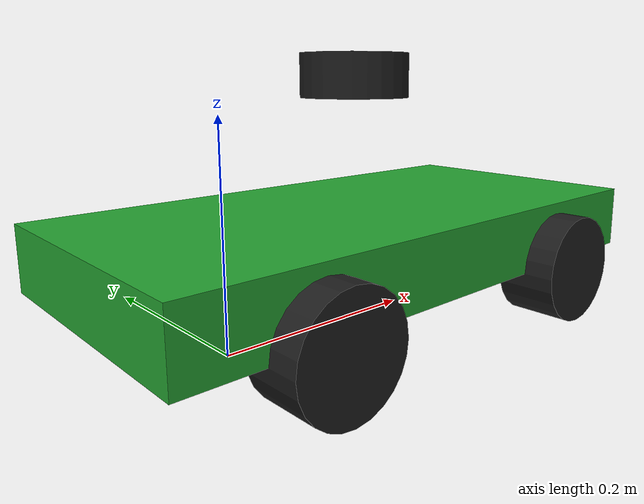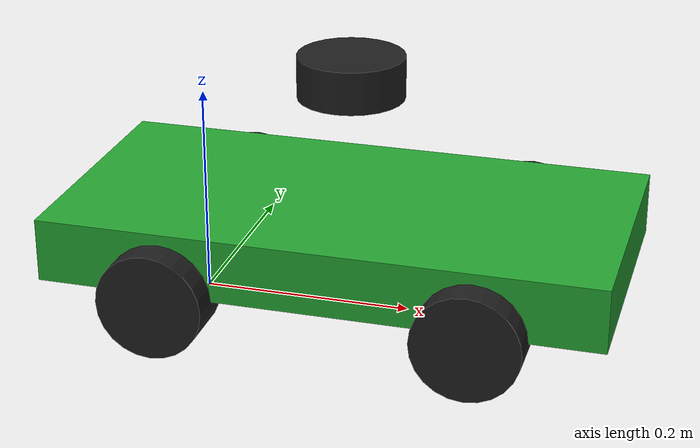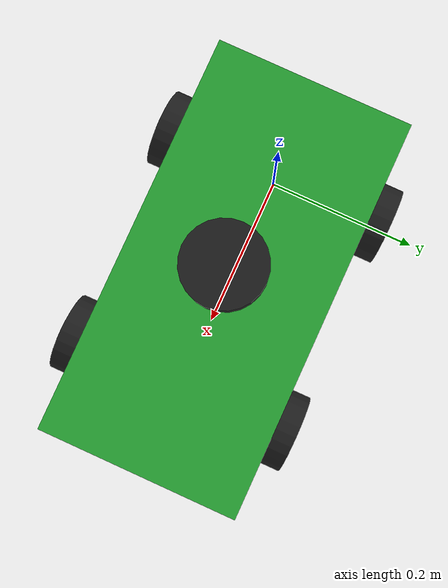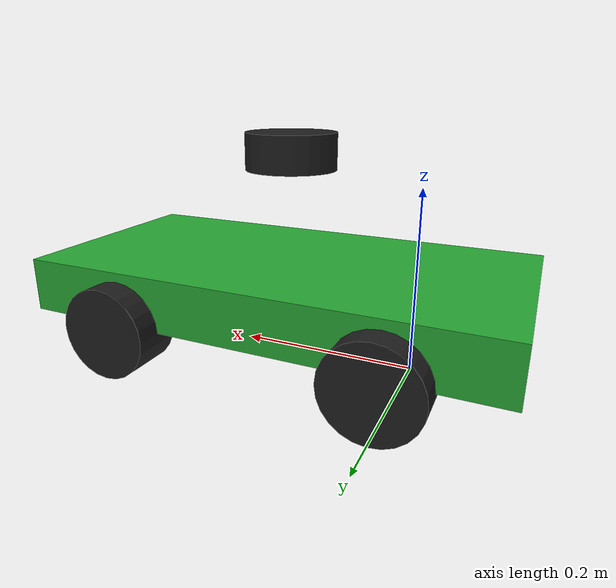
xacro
<?xml version="1.0"?>
<robot xmlns:xacro="http://www.ros.org/wiki/xacro"  name="robot">
    <xacro:include filename="inertial_macros.xacro" />
    <xacro:include filename="materials.xacro" />
    <xacro:include filename="lidar.xacro" />
    <xacro:include filename="robot_core.xacro" />
    <xacro:include filename="ros2_bicycle.xacro" />
</robot>

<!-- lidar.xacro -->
<robot xmlns:xacro="http://www.ros.org/wiki/xacro">

    <joint name="laser_joint" type="fixed">
        <parent link="chassis_link"/>
        <child link="laser_frame"/>
        <origin xyz="0 0 0.15" rpy="0 0 0"/>

    </joint>

    <link name="laser_frame">
        <visual>
            <geometry>
                <cylinder length="0.04" radius="0.05"/>
            </geometry>
            <material name="black"/>
        </visual>

        <collision>
            <geometry>
                <cylinder length="0.04" radius="0.05"/>
            </geometry>
        </collision>

        <xacro:inertial_cylinder mass="0.1" length="0.04" radius="0.05">
            <origin xyz="0 0 0" rpy="0 0 0"/>
        </xacro:inertial_cylinder>

    </link>

</robot>

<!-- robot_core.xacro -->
<robot xmlns:xacro="http://www.ros.org/wiki/xacro">

  <!-- Constants for robot dimensions -->
  <xacro:property name="PI" value="3.1415926535897931"/>
  <xacro:property name="base_mass" value="4.0" /> <!-- arbitrary value for base mass -->
  <xacro:property name="base_width" value="0.260" />
  <xacro:property name="base_length" value="0.525" />
  <xacro:property name="base_height" value="0.060" />
  <xacro:property name="wheelbase" value="0.289" />
  <xacro:property name="wheel_mass" value="0.34055" /> <!-- arbitrary value for wheel mass -->
  <xacro:property name="wheel_len" value="0.055" />
  <xacro:property name="wheel_radius" value="0.05" />

  <!-- Base Link -->
  <link name="base_link" />

  <!-- Base Footprint -->
  <joint name="base_footprint_joint" type="fixed">
    <parent link="base_link"/>
    <child link="base_footprint"/>
    <origin xyz="0 0 0" rpy="0 0 0"/>
  </joint>

  <link name="base_footprint" />

  <!-- Chassis -->

  <link name="chassis_link">
    <collision>
      <origin xyz="${wheelbase/2} 0 ${base_height/2 + wheel_radius}" rpy="0 0 0"/>
      <geometry>
        <box size="${base_length} ${base_width} ${base_height}"/>
      </geometry>
    </collision>

    <visual>
      <origin xyz="0 0 0" rpy="0 0 0"/>
      <geometry>
        <box size="${base_length} ${base_width} ${base_height}"/>
      </geometry>
      <material name="green"/>
    </visual>

    <xacro:inertial_box mass="${base_mass}" x="${wheelbase}" y="${base_width}" z="${base_height}">
      <origin xyz="${wheelbase/2} 0 ${base_height/2 + wheel_radius}" rpy="0 0 0"/>
    </xacro:inertial_box>
    </link>

    <joint name="chassis_joint" type="fixed">
      <parent link="base_link"/>
      <child link="chassis_link"/>
      <origin xyz="${wheelbase/2} 0 ${base_height/2 + wheel_radius}" rpy="0 0 0"/>
      <axis xyz="0 0 1"/>
      <dynamics damping="0.2"/>
    </joint>

    <!-- rear wheels -->

    <!-- virtual rear wheel -->

    <link name="virtual_rear_wheel">
      <visual>
        <origin xyz="0 0 0" rpy="${PI/2} 0 ${PI/2}"/>
        <geometry>
          <cylinder length="0.01" radius="${wheel_radius}"/>
        </geometry>
        <material name="invisible"/>
      </visual>
    </link>

    <joint name="virtual_rear_wheel_joint" type="continuous">
      <parent link="chassis_link"/>
      <child link="virtual_rear_wheel"/>
      <origin xyz="-${wheelbase/2} 0 -${base_height/2}" rpy="0 0 ${PI/2}"/>
      <axis xyz="1 0 0"/>
      <limit effort="100.0" velocity="0.5"/>
      <dynamics damping="0.2"/>
    </joint>

    <!-- rear right wheel -->

    <link name="rear_right_wheel">
      <collision>
        <origin xyz="0 0 0" rpy="${PI/2} 0 ${PI/2}"/>
        <geometry>
          <cylinder length="${wheel_len}" radius="${wheel_radius}"/>
        </geometry>
      </collision>

      <visual>
        <origin xyz="0 0 0" rpy="${PI/2} 0 ${PI/2}"/>
        <geometry>
          <cylinder length="${wheel_len}" radius="${wheel_radius}"/>
        </geometry>
        <material name="black"/>
      </visual>

      <xacro:inertial_cylinder mass="${wheel_mass}" length="${wheel_len}" radius="${wheel_radius}">
          <origin xyz="0 0 0" rpy="${PI/2} 0 ${PI/2}"/>
      </xacro:inertial_cylinder>

    </link>

    <joint name="rear_right_wheel_joint" type="continuous">
      <parent link="chassis_link"/>
      <child link="rear_right_wheel"/>
      <origin xyz="-${wheelbase/2} ${base_width/2} -${base_height/2}" rpy="0 0 ${PI/2}"/>
      <axis xyz="1 0 0"/>
      <limit effort="100.0" velocity="0.5"/>
      <dynamics damping="0.2"/>
      <mimic joint="virtual_rear_wheel_joint" multiplier="1.0" offset="0.0"/>
    </joint>

    <!-- rear left wheel -->
    <link name="rear_left_wheel">
        <collision>
          <origin xyz="0 0 0" rpy="${PI/2} 0 ${PI/2}"/>
          <geometry>
            <cylinder length="${wheel_len}" radius="${wheel_radius}"/>
          </geometry>
        </collision>

        <visual>
          <origin xyz="0 0 0" rpy="${PI/2} 0 ${PI/2}"/>
          <geometry>
            <cylinder length="${wheel_len}" radius="${wheel_radius}"/>
          </geometry>
          <material name="black"/>
        </visual>

      <xacro:inertial_cylinder mass="${wheel_mass}" length="${wheel_len}" radius="${wheel_radius}">
          <origin xyz="0 0 0" rpy="${PI/2} 0 ${PI/2}"/>
      </xacro:inertial_cylinder>

    </link>

    <joint name="rear_left_wheel_joint" type="continuous">
      <parent link="chassis_link" />
      <child link="rear_left_wheel" />
      <origin xyz="-${wheelbase/2} -${base_width/2} -${base_height/2}" rpy="0 0 ${PI/2}"/>
      <axis xyz="1 0 0"/>
      <limit effort="100.0" velocity="0.5"/>
      <dynamics damping="0.2"/>
      <mimic joint="virtual_rear_wheel_joint" multiplier="1.0" offset="0.0"/>
    </joint>

    <!-- front wheels -->

    <!-- virtual front wheel -->

    <link name="virtual_front_wheel">
      <visual>
        <origin xyz="0 0 0" rpy="${PI/2} 0 ${PI/2}"/>
        <geometry>
          <cylinder length="0.01" radius="${wheel_radius}"/>
        </geometry>
        <material name="invisible"/>
      </visual>
    </link>

    <joint name="virtual_front_wheel_joint" type="revolute">
      <parent link="chassis_link"/>
      <child link="virtual_front_wheel"/>
      <origin xyz="${wheelbase/2} 0 -${base_height/2}" rpy="0 0 ${PI/2}"/>
      <axis xyz="0 0 1"/>
      <limit lower="-0.785398" upper="0.785398" effort="1" velocity="1"/>
      <dynamics damping="0.2"/>
    </joint>

    <!-- front right wheel -->

    <link name="front_right_wheel">

      <collision>
        <origin xyz="0 0 0" rpy="${PI/2} 0 ${PI/2}"/>
        <geometry>
          <cylinder length="${wheel_len}" radius="${wheel_radius}"/>
        </geometry>
      </collision>

      <visual>
        <origin xyz="0 0 0" rpy="${PI/2} 0 ${PI/2}"/>
        <geometry>
          <cylinder length="${wheel_len}" radius="${wheel_radius}"/>
        </geometry>
        <material name="black"/>
      </visual>

      <xacro:inertial_cylinder mass="${wheel_mass}" length="${wheel_len}" radius="${wheel_radius}">
          <origin xyz="0 0 0" rpy="${PI/2} 0 ${PI/2}"/>
      </xacro:inertial_cylinder>
    </link>

    <joint name="front_right_wheel_joint" type="revolute">
      <parent link="chassis_link" />
      <child link="front_right_wheel" />
      <origin xyz="${wheelbase/2} ${base_width/2} -${base_height/2}" rpy="0 0 ${PI/2}"/>
      <axis xyz="0 0 1"/>
      <limit lower="-0.785398" upper="0.785398" effort="1" velocity="1"/>
      <dynamics damping="0.2"/>
    </joint>

    <!-- front left steering -->

    <link name="front_left_wheel">
      <collision>
        <origin xyz="0 0 0" rpy="${PI/2} 0 ${PI/2}"/>
        <geometry>
          <cylinder length="${wheel_len}" radius="${wheel_radius}"/>
        </geometry>
      </collision>

      <visual>
        <origin xyz="0 0 0" rpy="${PI/2} 0 ${PI/2}"/>
        <geometry>
          <cylinder length="${wheel_len}" radius="${wheel_radius}"/>
        </geometry>
        <material name="black"/>
      </visual>

      <xacro:inertial_cylinder mass="${wheel_mass}" length="${wheel_len}" radius="${wheel_radius}">
          <origin xyz="0 0 0" rpy="${PI/2} 0 ${PI/2}"/>
      </xacro:inertial_cylinder>

    </link>

    <joint name="front_left_wheel_joint" type="revolute">
      <parent link="chassis_link" />
      <child link="front_left_wheel" />
      <origin xyz="${wheelbase/2} -${base_width/2} -${base_height/2}" rpy="0 0 ${PI/2}"/>
      <axis xyz="0 0 1"/>
      <limit lower="-0.785398" upper="0.785398" effort="1" velocity="1"/>
      <dynamics damping="0.2"/>
    </joint>

</robot>
